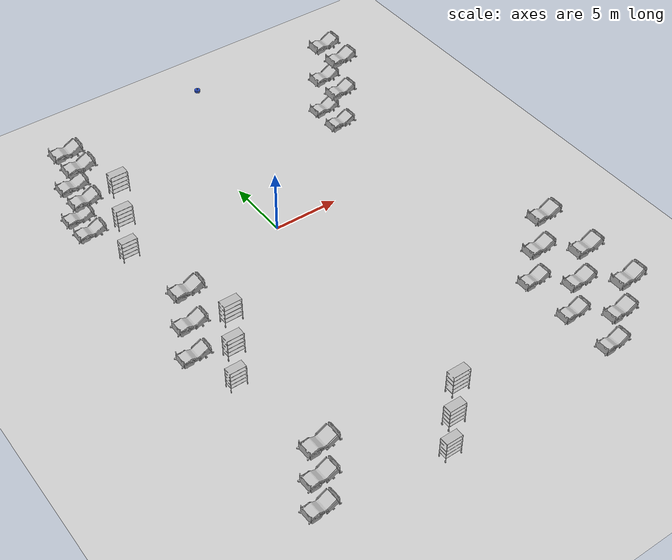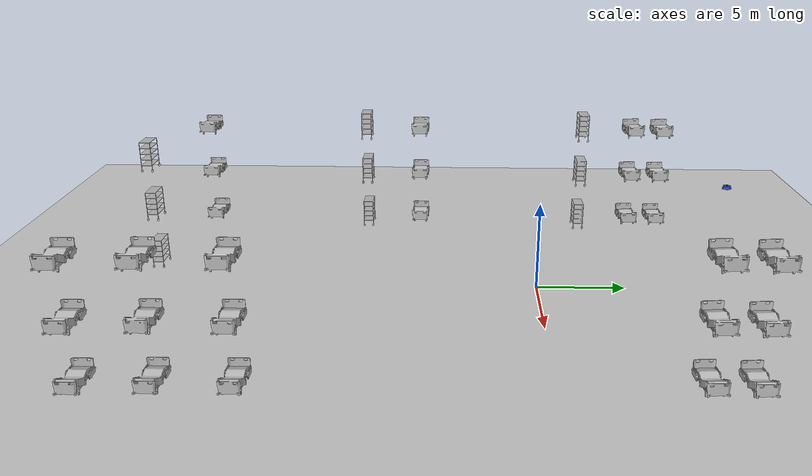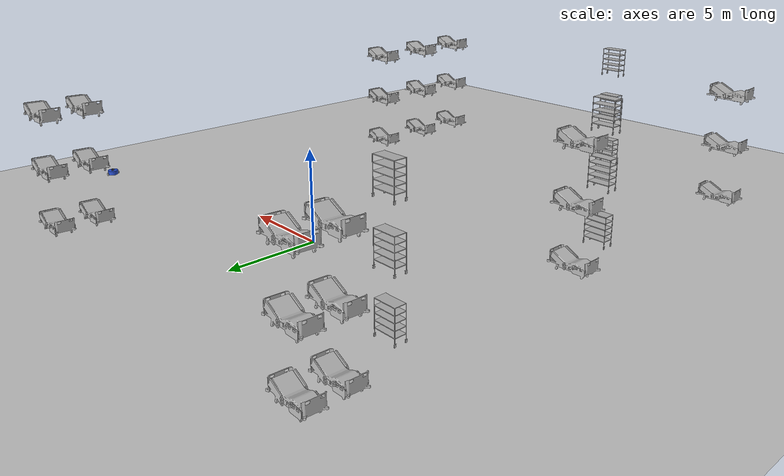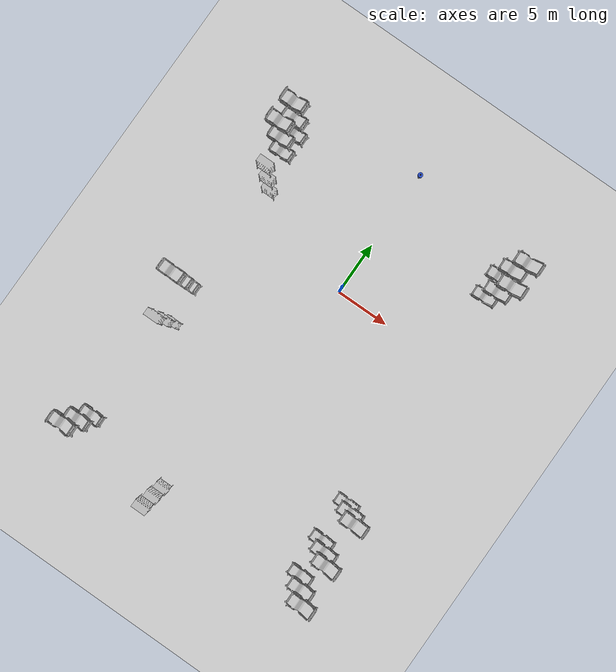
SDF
<sdf version="1.6">
 <world name="world">
  <gravity>0 0 -9.8</gravity>
  <physics name="default_physics" default="0" type="ode">
   <max_step_size>0.001</max_step_size>
   <real_time_factor>1</real_time_factor>
   <real_time_update_rate>1000</real_time_update_rate>
  </physics>
  <scene><ambient>0.6 0.6 0.6 1</ambient><background>0.4 0.4 0.4 1</background><shadows>0</shadows></scene>
  <light name="sun" type="directional">
   <pose>0 0 10 0 -0 0</pose>
   <diffuse>0.8 0.8 0.8 1</diffuse>
   <specular>0.2 0.2 0.2 1</specular>
   <attenuation>
    <range>1000</range>
    <constant>0.9</constant>
    <linear>0.01</linear>
    <quadratic>0.001</quadratic>
   </attenuation>
   <direction>-0.5 0.1 -0.9</direction>
  </light>
  <model name="ground_plane">
   <static>1</static>
   <link name="link">
    <collision name="collision">
     <geometry><plane><normal>0 0 1</normal><size>100 100</size></plane></geometry>
     <surface><friction><ode><mu>100</mu><mu2>50</mu2></ode></friction></surface>
    </collision>
    <visual name="visual">
     <cast_shadows>0</cast_shadows>
     <geometry><plane><normal>0 0 1</normal><size>100 100</size></plane></geometry>
     <material>
      <script><uri>file://media/materials/scripts/gazebo.material</uri><name>Gazebo/Grey</name></script>
     </material>
    </visual>
   </link>
   <pose>0 0 -0.1 0 -0 0</pose>
  </model>
  <model name="CGMClassic_1">
   <static>1</static>
   <link name="CGMClassic::body">
    <pose>11.1777 -18.4129 0 0 0 -3.13719</pose>
    <visual name="visual">
     <geometry>
      <mesh><uri>model://CGMClassic/meshes/CGMClassic.obj</uri><scale>0.01 0.01 0.01</scale></mesh>
     </geometry>
    </visual>
    <collision name="collision">
     <geometry>
      <mesh><uri>model://CGMClassic/meshes/CGMClassic.obj</uri><scale>0.01 0.01 0.01</scale></mesh>
     </geometry>
    </collision>
   </link>
  </model>
  <model name="CGMClassic_2">
   <static>1</static>
   <link name="CGMClassic::body">
    <pose>11.1179 -14.6493 0 0 0 -3.13599</pose>
    <visual name="visual">
     <geometry>
      <mesh><uri>model://CGMClassic/meshes/CGMClassic.obj</uri><scale>0.01 0.01 0.01</scale></mesh>
     </geometry>
    </visual>
    <collision name="collision">
     <geometry>
      <mesh><uri>model://CGMClassic/meshes/CGMClassic.obj</uri><scale>0.01 0.01 0.01</scale></mesh>
     </geometry>
    </collision>
   </link>
  </model>
  <model name="CGMClassic_3">
   <static>1</static>
   <link name="CGMClassic::body">
    <pose>-11.2304 -21.1134 0 0 0 -3.11834</pose>
    <visual name="visual">
     <geometry>
      <mesh><uri>model://CGMClassic/meshes/CGMClassic.obj</uri><scale>0.01 0.01 0.01</scale></mesh>
     </geometry>
    </visual>
    <collision name="collision">
     <geometry>
      <mesh><uri>model://CGMClassic/meshes/CGMClassic.obj</uri><scale>0.01 0.01 0.01</scale></mesh>
     </geometry>
    </collision>
   </link>
  </model>
  <model name="CGMClassic_4">
   <static>1</static>
   <link name="CGMClassic::body">
    <pose>-11.0878 -7.00992 0 0 -0 3.1351</pose>
    <visual name="visual">
     <geometry>
      <mesh><uri>model://CGMClassic/meshes/CGMClassic.obj</uri><scale>0.01 0.01 0.01</scale></mesh>
     </geometry>
    </visual>
    <collision name="collision">
     <geometry>
      <mesh><uri>model://CGMClassic/meshes/CGMClassic.obj</uri><scale>0.01 0.01 0.01</scale></mesh>
     </geometry>
    </collision>
   </link>
  </model>
  <model name="CGMClassic_5">
   <static>1</static>
   <link name="CGMClassic::body">
    <pose>-11.0106 8.9505 -0.008203 -0.035019 -0.000392 3.13388</pose>
    <visual name="visual">
     <geometry>
      <mesh><uri>model://CGMClassic/meshes/CGMClassic.obj</uri><scale>0.01 0.01 0.01</scale></mesh>
     </geometry>
    </visual>
    <collision name="collision">
     <geometry>
      <mesh><uri>model://CGMClassic/meshes/CGMClassic.obj</uri><scale>0.01 0.01 0.01</scale></mesh>
     </geometry>
    </collision>
   </link>
  </model>
  <model name="CGMClassic_6">
   <static>1</static>
   <link name="CGMClassic::body">
    <pose>-11.025 7.10335 0 -0.035021 1.8e-05 -3.13762</pose>
    <visual name="visual">
     <geometry>
      <mesh><uri>model://CGMClassic/meshes/CGMClassic.obj</uri><scale>0.01 0.01 0.01</scale></mesh>
     </geometry>
    </visual>
    <collision name="collision">
     <geometry>
      <mesh><uri>model://CGMClassic/meshes/CGMClassic.obj</uri><scale>0.01 0.01 0.01</scale></mesh>
     </geometry>
    </collision>
   </link>
  </model>
  <model name="StorageRack_2">
   <link name="StorageRack::link">
    <pose>-2.69866 -22.4178 -8e-06 0 4e-06 0</pose>
    <visual name="visual">
     <geometry><mesh><uri>model://StorageRack/meshes/StorageRack.obj</uri></mesh></geometry>
    </visual>
    <collision name="collision">
     <geometry><mesh><uri>model://StorageRack/meshes/StorageRack.obj</uri></mesh></geometry>
    </collision>
   </link>
   <static>1</static>
  </model>
  <model name="CGMClassic_7">
   <static>1</static>
   <link name="CGMClassic::body">
    <pose>10.6166 9.06291 -0.008203 -0.03501 0.000885 -3.11285</pose>
    <visual name="visual">
     <geometry>
      <mesh><uri>model://CGMClassic/meshes/CGMClassic.obj</uri><scale>0.01 0.01 0.01</scale></mesh>
     </geometry>
    </visual>
    <collision name="collision">
     <geometry>
      <mesh><uri>model://CGMClassic/meshes/CGMClassic.obj</uri><scale>0.01 0.01 0.01</scale></mesh>
     </geometry>
    </collision>
   </link>
  </model>
  <model name="CGMClassic_8">
   <static>1</static>
   <link name="CGMClassic::body">
    <pose>10.6006 6.90956 -0.008203 -0.035003 0.001133 -3.10576</pose>
    <visual name="visual">
     <geometry>
      <mesh><uri>model://CGMClassic/meshes/CGMClassic.obj</uri><scale>0.01 0.01 0.01</scale></mesh>
     </geometry>
    </visual>
    <collision name="collision">
     <geometry>
      <mesh><uri>model://CGMClassic/meshes/CGMClassic.obj</uri><scale>0.01 0.01 0.01</scale></mesh>
     </geometry>
    </collision>
   </link>
  </model>
  <model name="CGMClassic_9">
   <static>1</static>
   <link name="CGMClassic::body">
    <pose>11.3613 -21.8867 0 0 0 -3.12292</pose>
    <visual name="visual">
     <geometry>
      <mesh><uri>model://CGMClassic/meshes/CGMClassic.obj</uri><scale>0.01 0.01 0.01</scale></mesh>
     </geometry>
    </visual>
    <collision name="collision">
     <geometry>
      <mesh><uri>model://CGMClassic/meshes/CGMClassic.obj</uri><scale>0.01 0.01 0.01</scale></mesh>
     </geometry>
    </collision>
   </link>
  </model>
  <model name="StorageRack_3">
   <link name="StorageRack::link">
    <pose>-10.1178 -10.4694 0 0 -0 0</pose>
    <visual name="visual">
     <geometry><mesh><uri>model://StorageRack/meshes/StorageRack.obj</uri></mesh></geometry>
    </visual>
    <collision name="collision">
     <geometry><mesh><uri>model://StorageRack/meshes/StorageRack.obj</uri></mesh></geometry>
    </collision>
   </link>
   <static>1</static>
  </model>
  <model name="StorageRack_4">
   <link name="StorageRack::link">
    <pose>-9.91557 3.5644 -9e-06 1e-06 1e-06 -0.000273</pose>
    <visual name="visual">
     <geometry><mesh><uri>model://StorageRack/meshes/StorageRack.obj</uri></mesh></geometry>
    </visual>
    <collision name="collision">
     <geometry><mesh><uri>model://StorageRack/meshes/StorageRack.obj</uri></mesh></geometry>
    </collision>
   </link>
   <static>1</static>
  </model>
  <model name="floor_1_CGMClassic_1">
   <static>1</static>
   <link name="CGMClassic::body">
    <pose>11.1777 -18.4129 3 0 0 -3.13719</pose>
    <visual name="visual">
     <geometry>
      <mesh><uri>model://CGMClassic/meshes/CGMClassic.obj</uri><scale>0.01 0.01 0.01</scale></mesh>
     </geometry>
    </visual>
    <collision name="collision">
     <geometry>
      <mesh><uri>model://CGMClassic/meshes/CGMClassic.obj</uri><scale>0.01 0.01 0.01</scale></mesh>
     </geometry>
    </collision>
   </link>
  </model>
  <model name="floor_1_CGMClassic_2">
   <static>1</static>
   <link name="CGMClassic::body">
    <pose>11.1179 -14.6493 3 0 0 -3.13599</pose>
    <visual name="visual">
     <geometry>
      <mesh><uri>model://CGMClassic/meshes/CGMClassic.obj</uri><scale>0.01 0.01 0.01</scale></mesh>
     </geometry>
    </visual>
    <collision name="collision">
     <geometry>
      <mesh><uri>model://CGMClassic/meshes/CGMClassic.obj</uri><scale>0.01 0.01 0.01</scale></mesh>
     </geometry>
    </collision>
   </link>
  </model>
  <model name="floor_1_CGMClassic_3">
   <static>1</static>
   <link name="CGMClassic::body">
    <pose>-11.2304 -21.1134 3 0 0 -3.11834</pose>
    <visual name="visual">
     <geometry>
      <mesh><uri>model://CGMClassic/meshes/CGMClassic.obj</uri><scale>0.01 0.01 0.01</scale></mesh>
     </geometry>
    </visual>
    <collision name="collision">
     <geometry>
      <mesh><uri>model://CGMClassic/meshes/CGMClassic.obj</uri><scale>0.01 0.01 0.01</scale></mesh>
     </geometry>
    </collision>
   </link>
  </model>
  <model name="floor_1_CGMClassic_4">
   <static>1</static>
   <link name="CGMClassic::body">
    <pose>-11.0878 -7.00992 3 0 -0 3.1351</pose>
    <visual name="visual">
     <geometry>
      <mesh><uri>model://CGMClassic/meshes/CGMClassic.obj</uri><scale>0.01 0.01 0.01</scale></mesh>
     </geometry>
    </visual>
    <collision name="collision">
     <geometry>
      <mesh><uri>model://CGMClassic/meshes/CGMClassic.obj</uri><scale>0.01 0.01 0.01</scale></mesh>
     </geometry>
    </collision>
   </link>
  </model>
  <model name="floor_1_CGMClassic_5">
   <static>1</static>
   <link name="CGMClassic::body">
    <pose>-11.0106 8.9505 2.9918 -0.035019 -0.000392 3.13388</pose>
    <visual name="visual">
     <geometry>
      <mesh><uri>model://CGMClassic/meshes/CGMClassic.obj</uri><scale>0.01 0.01 0.01</scale></mesh>
     </geometry>
    </visual>
    <collision name="collision">
     <geometry>
      <mesh><uri>model://CGMClassic/meshes/CGMClassic.obj</uri><scale>0.01 0.01 0.01</scale></mesh>
     </geometry>
    </collision>
   </link>
  </model>
  <model name="floor_1_CGMClassic_6">
   <static>1</static>
   <link name="CGMClassic::body">
    <pose>-11.025 7.10335 3 -0.035021 1.8e-05 -3.13762</pose>
    <visual name="visual">
     <geometry>
      <mesh><uri>model://CGMClassic/meshes/CGMClassic.obj</uri><scale>0.01 0.01 0.01</scale></mesh>
     </geometry>
    </visual>
    <collision name="collision">
     <geometry>
      <mesh><uri>model://CGMClassic/meshes/CGMClassic.obj</uri><scale>0.01 0.01 0.01</scale></mesh>
     </geometry>
    </collision>
   </link>
  </model>
  <model name="floor_1_StorageRack_2">
   <link name="StorageRack::link">
    <pose>-2.69866 -22.4178 2.99999 0 4e-06 0</pose>
    <visual name="visual">
     <geometry><mesh><uri>model://StorageRack/meshes/StorageRack.obj</uri></mesh></geometry>
    </visual>
    <collision name="collision">
     <geometry><mesh><uri>model://StorageRack/meshes/StorageRack.obj</uri></mesh></geometry>
    </collision>
   </link>
   <static>1</static>
  </model>
  <model name="floor_1_CGMClassic_7">
   <static>1</static>
   <link name="CGMClassic::body">
    <pose>10.6166 9.06291 2.9918 -0.03501 0.000885 -3.11285</pose>
    <visual name="visual">
     <geometry>
      <mesh><uri>model://CGMClassic/meshes/CGMClassic.obj</uri><scale>0.01 0.01 0.01</scale></mesh>
     </geometry>
    </visual>
    <collision name="collision">
     <geometry>
      <mesh><uri>model://CGMClassic/meshes/CGMClassic.obj</uri><scale>0.01 0.01 0.01</scale></mesh>
     </geometry>
    </collision>
   </link>
  </model>
  <model name="floor_1_CGMClassic_8">
   <static>1</static>
   <link name="CGMClassic::body">
    <pose>10.6006 6.90956 2.9918 -0.035003 0.001133 -3.10576</pose>
    <visual name="visual">
     <geometry>
      <mesh><uri>model://CGMClassic/meshes/CGMClassic.obj</uri><scale>0.01 0.01 0.01</scale></mesh>
     </geometry>
    </visual>
    <collision name="collision">
     <geometry>
      <mesh><uri>model://CGMClassic/meshes/CGMClassic.obj</uri><scale>0.01 0.01 0.01</scale></mesh>
     </geometry>
    </collision>
   </link>
  </model>
  <model name="floor_1_CGMClassic_9">
   <static>1</static>
   <link name="CGMClassic::body">
    <pose>11.3613 -21.8867 3 0 0 -3.12292</pose>
    <visual name="visual">
     <geometry>
      <mesh><uri>model://CGMClassic/meshes/CGMClassic.obj</uri><scale>0.01 0.01 0.01</scale></mesh>
     </geometry>
    </visual>
    <collision name="collision">
     <geometry>
      <mesh><uri>model://CGMClassic/meshes/CGMClassic.obj</uri><scale>0.01 0.01 0.01</scale></mesh>
     </geometry>
    </collision>
   </link>
  </model>
  <model name="floor_1_StorageRack_3">
   <link name="StorageRack::link">
    <pose>-10.1178 -10.4694 3 0 -0 0</pose>
    <visual name="visual">
     <geometry><mesh><uri>model://StorageRack/meshes/StorageRack.obj</uri></mesh></geometry>
    </visual>
    <collision name="collision">
     <geometry><mesh><uri>model://StorageRack/meshes/StorageRack.obj</uri></mesh></geometry>
    </collision>
   </link>
   <static>1</static>
  </model>
  <model name="floor_1_StorageRack_4">
   <link name="StorageRack::link">
    <pose>-9.91557 3.5644 2.99999 1e-06 1e-06 -0.000273</pose>
    <visual name="visual">
     <geometry><mesh><uri>model://StorageRack/meshes/StorageRack.obj</uri></mesh></geometry>
    </visual>
    <collision name="collision">
     <geometry><mesh><uri>model://StorageRack/meshes/StorageRack.obj</uri></mesh></geometry>
    </collision>
   </link>
   <static>1</static>
  </model>
  <model name="floor_2_CGMClassic_1">
   <static>1</static>
   <link name="CGMClassic::body">
    <pose>11.1777 -18.4129 6 0 0 -3.13719</pose>
    <visual name="visual">
     <geometry>
      <mesh><uri>model://CGMClassic/meshes/CGMClassic.obj</uri><scale>0.01 0.01 0.01</scale></mesh>
     </geometry>
    </visual>
    <collision name="collision">
     <geometry>
      <mesh><uri>model://CGMClassic/meshes/CGMClassic.obj</uri><scale>0.01 0.01 0.01</scale></mesh>
     </geometry>
    </collision>
   </link>
  </model>
  <model name="floor_2_CGMClassic_2">
   <static>1</static>
   <link name="CGMClassic::body">
    <pose>11.1179 -14.6493 6 0 0 -3.13599</pose>
    <visual name="visual">
     <geometry>
      <mesh><uri>model://CGMClassic/meshes/CGMClassic.obj</uri><scale>0.01 0.01 0.01</scale></mesh>
     </geometry>
    </visual>
    <collision name="collision">
     <geometry>
      <mesh><uri>model://CGMClassic/meshes/CGMClassic.obj</uri><scale>0.01 0.01 0.01</scale></mesh>
     </geometry>
    </collision>
   </link>
  </model>
  <model name="floor_2_CGMClassic_3">
   <static>1</static>
   <link name="CGMClassic::body">
    <pose>-11.2304 -21.1134 6 0 0 -3.11834</pose>
    <visual name="visual">
     <geometry>
      <mesh><uri>model://CGMClassic/meshes/CGMClassic.obj</uri><scale>0.01 0.01 0.01</scale></mesh>
     </geometry>
    </visual>
    <collision name="collision">
     <geometry>
      <mesh><uri>model://CGMClassic/meshes/CGMClassic.obj</uri><scale>0.01 0.01 0.01</scale></mesh>
     </geometry>
    </collision>
   </link>
  </model>
  <model name="floor_2_CGMClassic_4">
   <static>1</static>
   <link name="CGMClassic::body">
    <pose>-11.0878 -7.00992 6 0 -0 3.1351</pose>
    <visual name="visual">
     <geometry>
      <mesh><uri>model://CGMClassic/meshes/CGMClassic.obj</uri><scale>0.01 0.01 0.01</scale></mesh>
     </geometry>
    </visual>
    <collision name="collision">
     <geometry>
      <mesh><uri>model://CGMClassic/meshes/CGMClassic.obj</uri><scale>0.01 0.01 0.01</scale></mesh>
     </geometry>
    </collision>
   </link>
  </model>
  <model name="floor_2_CGMClassic_5">
   <static>1</static>
   <link name="CGMClassic::body">
    <pose>-11.0106 8.9505 5.9918 -0.035019 -0.000392 3.13388</pose>
    <visual name="visual">
     <geometry>
      <mesh><uri>model://CGMClassic/meshes/CGMClassic.obj</uri><scale>0.01 0.01 0.01</scale></mesh>
     </geometry>
    </visual>
    <collision name="collision">
     <geometry>
      <mesh><uri>model://CGMClassic/meshes/CGMClassic.obj</uri><scale>0.01 0.01 0.01</scale></mesh>
     </geometry>
    </collision>
   </link>
  </model>
  <model name="floor_2_CGMClassic_6">
   <static>1</static>
   <link name="CGMClassic::body">
    <pose>-11.025 7.10335 6 -0.035021 1.8e-05 -3.13762</pose>
    <visual name="visual">
     <geometry>
      <mesh><uri>model://CGMClassic/meshes/CGMClassic.obj</uri><scale>0.01 0.01 0.01</scale></mesh>
     </geometry>
    </visual>
    <collision name="collision">
     <geometry>
      <mesh><uri>model://CGMClassic/meshes/CGMClassic.obj</uri><scale>0.01 0.01 0.01</scale></mesh>
     </geometry>
    </collision>
   </link>
  </model>
  <model name="floor_2_StorageRack_2">
   <link name="StorageRack::link">
    <pose>-2.69866 -22.4178 5.99999 0 4e-06 0</pose>
    <visual name="visual">
     <geometry><mesh><uri>model://StorageRack/meshes/StorageRack.obj</uri></mesh></geometry>
    </visual>
    <collision name="collision">
     <geometry><mesh><uri>model://StorageRack/meshes/StorageRack.obj</uri></mesh></geometry>
    </collision>
   </link>
   <static>1</static>
  </model>
  <model name="floor_2_CGMClassic_7">
   <static>1</static>
   <link name="CGMClassic::body">
    <pose>10.6166 9.06291 5.9918 -0.03501 0.000885 -3.11285</pose>
    <visual name="visual">
     <geometry>
      <mesh><uri>model://CGMClassic/meshes/CGMClassic.obj</uri><scale>0.01 0.01 0.01</scale></mesh>
     </geometry>
    </visual>
    <collision name="collision">
     <geometry>
      <mesh><uri>model://CGMClassic/meshes/CGMClassic.obj</uri><scale>0.01 0.01 0.01</scale></mesh>
     </geometry>
    </collision>
   </link>
  </model>
  <model name="floor_2_CGMClassic_8">
   <static>1</static>
   <link name="CGMClassic::body">
    <pose>10.6006 6.90956 5.9918 -0.035003 0.001133 -3.10576</pose>
    <visual name="visual">
     <geometry>
      <mesh><uri>model://CGMClassic/meshes/CGMClassic.obj</uri><scale>0.01 0.01 0.01</scale></mesh>
     </geometry>
    </visual>
    <collision name="collision">
     <geometry>
      <mesh><uri>model://CGMClassic/meshes/CGMClassic.obj</uri><scale>0.01 0.01 0.01</scale></mesh>
     </geometry>
    </collision>
   </link>
  </model>
  <model name="floor_2_CGMClassic_9">
   <static>1</static>
   <link name="CGMClassic::body">
    <pose>11.3613 -21.8867 6 0 0 -3.12292</pose>
    <visual name="visual">
     <geometry>
      <mesh><uri>model://CGMClassic/meshes/CGMClassic.obj</uri><scale>0.01 0.01 0.01</scale></mesh>
     </geometry>
    </visual>
    <collision name="collision">
     <geometry>
      <mesh><uri>model://CGMClassic/meshes/CGMClassic.obj</uri><scale>0.01 0.01 0.01</scale></mesh>
     </geometry>
    </collision>
   </link>
  </model>
  <model name="floor_2_StorageRack_3">
   <link name="StorageRack::link">
    <pose>-10.1178 -10.4694 6 0 -0 0</pose>
    <visual name="visual">
     <geometry><mesh><uri>model://StorageRack/meshes/StorageRack.obj</uri></mesh></geometry>
    </visual>
    <collision name="collision">
     <geometry><mesh><uri>model://StorageRack/meshes/StorageRack.obj</uri></mesh></geometry>
    </collision>
   </link>
   <static>1</static>
  </model>
  <model name="floor_2_StorageRack_4">
   <link name="StorageRack::link">
    <pose>-9.91557 3.5644 5.99999 1e-06 1e-06 -0.000273</pose>
    <visual name="visual">
     <geometry><mesh><uri>model://StorageRack/meshes/StorageRack.obj</uri></mesh></geometry>
    </visual>
    <collision name="collision">
     <geometry><mesh><uri>model://StorageRack/meshes/StorageRack.obj</uri></mesh></geometry>
    </collision>
   </link>
   <static>1</static>
  </model>
  <magnetic_field>6e-06 2.3e-05 -4.2e-05</magnetic_field>
  <atmosphere type="adiabatic"/>
  <spherical_coordinates>
   <surface_model>EARTH_WGS84</surface_model>
   <latitude_deg>0</latitude_deg>
   <longitude_deg>0</longitude_deg>
   <elevation>0</elevation>
   <heading_deg>0</heading_deg>
  </spherical_coordinates>
  <model name="my_robot">
   <link name="base_link">
    <inertial>
     <pose>0 0 4e-06 0 -0 0</pose>
     <mass>25.001</mass>
     <inertia><ixx>1.00101</ixx><ixy>0</ixy><ixz>0</ixz><iyy>1.00101</iyy><iyz>0</iyz><izz>1.001</izz></inertia>
    </inertial>
    <collision name="base_link_collision">
     <geometry><cylinder><length>0.16</length><radius>0.2</radius></cylinder></geometry>
    </collision>
    <collision name="base_link_fixed_joint_lump__lidar_link_collision_1">
     <pose>0 0 0.1 0 -0 0</pose>
     <geometry><cylinder><length>0.06</length><radius>0.05</radius></cylinder></geometry>
    </collision>
    <visual name="base_link_visual">
     <geometry><cylinder><length>0.16</length><radius>0.2</radius></cylinder></geometry>
     <material>
      <script><name>Gazebo/Blue</name><uri>file://media/materials/scripts/gazebo.material</uri></script>
     </material>
    </visual>
    <visual name="base_link_fixed_joint_lump__lidar_link_visual_1">
     <pose>0 0 0.1 0 -0 0</pose>
     <geometry><cylinder><length>0.05</length><radius>0.05</radius></cylinder></geometry>
     <material>
      <script><name>Gazebo/Black</name><uri>file://media/materials/scripts/gazebo.material</uri></script>
     </material>
    </visual>
    <sensor name="ls01g" type="ray">
     <visualize>0</visualize>
     <update_rate>7</update_rate>
     <ray>
      <scan>
       <horizontal>
        <samples>360</samples>
        <resolution>1</resolution>
        <min_angle>-3.14159</min_angle>
        <max_angle>3.14159</max_angle>
       </horizontal>
       <vertical><samples>1</samples><min_angle>0</min_angle><max_angle>0</max_angle></vertical>
      </scan>
      <range><min>0.1</min><max>8</max><resolution>0.01</resolution></range>
      <noise><type>gaussian</type><mean>0</mean><stddev>0.02</stddev></noise>
     </ray>
     <plugin name="gazebo_ls01g" filename="libgazebo_ros_laser.so">
      <topicName>/scan</topicName>
      <frameName>lidar_link</frameName>
      <robotNamespace>/</robotNamespace>
     </plugin>
     <pose>0 0 0.1 0 -0 0</pose>
    </sensor>
   </link>
   <link name="back_caster_link">
    <pose>-0.18 0 -0.095 0 -0 0</pose>
    <inertial>
     <mass>0.5</mass>
     <inertia><ixx>1</ixx><ixy>0</ixy><ixz>0</ixz><iyy>1</iyy><iyz>0</iyz><izz>1</izz></inertia>
    </inertial>
    <collision name="back_caster_link_collision">
     <geometry><sphere><radius>0.015</radius></sphere></geometry>
    </collision>
    <visual name="back_caster_link_visual"><geometry><sphere><radius>0.015</radius></sphere></geometry></visual>
   </link>
   <joint name="back_caster_joint" type="revolute">
    <child>back_caster_link</child>
    <parent>base_link</parent>
    <axis>
     <xyz>0 1 0</xyz>
     <limit><lower>-1e+16</lower><upper>1e+16</upper></limit>
     <dynamics><spring_reference>0</spring_reference><spring_stiffness>0</spring_stiffness></dynamics>
     <use_parent_model_frame>0</use_parent_model_frame>
    </axis>
   </joint>
   <link name="front_caster_link">
    <pose>0.18 0 -0.095 0 -0 0</pose>
    <inertial>
     <mass>0.5</mass>
     <inertia><ixx>1</ixx><ixy>0</ixy><ixz>0</ixz><iyy>1</iyy><iyz>0</iyz><izz>1</izz></inertia>
    </inertial>
    <collision name="front_caster_link_collision">
     <geometry><sphere><radius>0.015</radius></sphere></geometry>
    </collision>
    <visual name="front_caster_link_visual"><geometry><sphere><radius>0.015</radius></sphere></geometry></visual>
   </link>
   <joint name="front_caster_joint" type="revolute">
    <child>front_caster_link</child>
    <parent>base_link</parent>
    <axis>
     <xyz>0 1 0</xyz>
     <limit><lower>-1e+16</lower><upper>1e+16</upper></limit>
     <dynamics><spring_reference>0</spring_reference><spring_stiffness>0</spring_stiffness></dynamics>
     <use_parent_model_frame>0</use_parent_model_frame>
    </axis>
   </joint>
   <link name="left_wheel_link">
    <pose>0 0.22 -0.05 0 -0 0</pose>
    <inertial>
     <mass>10</mass>
     <inertia><ixx>1</ixx><ixy>0</ixy><ixz>0</ixz><iyy>1</iyy><iyz>0</iyz><izz>1</izz></inertia>
    </inertial>
    <collision name="left_wheel_link_collision">
     <pose>0 0 0 1.5707 -0 0</pose>
     <geometry><cylinder><length>0.025</length><radius>0.06</radius></cylinder></geometry>
    </collision>
    <visual name="left_wheel_link_visual">
     <pose>0 0 0 1.5707 -0 0</pose>
     <geometry><cylinder><length>0.025</length><radius>0.06</radius></cylinder></geometry>
    </visual>
   </link>
   <joint name="left_wheel_joint" type="revolute">
    <child>left_wheel_link</child>
    <parent>base_link</parent>
    <axis>
     <xyz>0 1 0</xyz>
     <limit><lower>-1e+16</lower><upper>1e+16</upper></limit>
     <dynamics><spring_reference>0</spring_reference><spring_stiffness>0</spring_stiffness></dynamics>
     <use_parent_model_frame>0</use_parent_model_frame>
    </axis>
   </joint>
   <link name="right_wheel_link">
    <pose>0 -0.22 -0.05 0 -0 0</pose>
    <inertial>
     <mass>10</mass>
     <inertia><ixx>1</ixx><ixy>0</ixy><ixz>0</ixz><iyy>1</iyy><iyz>0</iyz><izz>1</izz></inertia>
    </inertial>
    <collision name="right_wheel_link_collision">
     <pose>0 0 0 1.5707 -0 0</pose>
     <geometry><cylinder><length>0.025</length><radius>0.06</radius></cylinder></geometry>
    </collision>
    <visual name="right_wheel_link_visual">
     <pose>0 0 0 1.5707 -0 0</pose>
     <geometry><cylinder><length>0.025</length><radius>0.06</radius></cylinder></geometry>
    </visual>
   </link>
   <joint name="right_wheel_joint" type="revolute">
    <child>right_wheel_link</child>
    <parent>base_link</parent>
    <axis>
     <xyz>0 1 0</xyz>
     <limit><lower>-1e+16</lower><upper>1e+16</upper></limit>
     <dynamics><spring_reference>0</spring_reference><spring_stiffness>0</spring_stiffness></dynamics>
     <use_parent_model_frame>0</use_parent_model_frame>
    </axis>
   </joint>
   <plugin name="differential_drive_controller" filename="libgazebo_ros_diff_drive.so">
    <rosDebugLevel>Debug</rosDebugLevel>
    <publishWheelTF>1</publishWheelTF>
    <robotNamespace>/</robotNamespace>
    <publishTf>1</publishTf>
    <publishWheelJointState>1</publishWheelJointState>
    <alwaysOn>1</alwaysOn>
    <updateRate>100.0</updateRate>
    <legacyMode>1</legacyMode>
    <leftJoint>left_wheel_joint</leftJoint>
    <rightJoint>right_wheel_joint</rightJoint>
    <wheelSeparation>0.44</wheelSeparation>
    <wheelDiameter>0.12</wheelDiameter>
    <broadcastTF>1</broadcastTF>
    <wheelTorque>30</wheelTorque>
    <wheelAcceleration>1.8</wheelAcceleration>
    <commandTopic>cmd_vel</commandTopic>
    <odometryFrame>odom</odometryFrame>
    <odometryTopic>odom</odometryTopic>
    <robotBaseFrame>base_link</robotBaseFrame>
   </plugin>
   <static>0</static>
   <plugin name="gazebo_ros_control" filename="libgazebo_ros_control.so">
    <robotNamespace>/robot</robotNamespace>
    <controlPeriod>0.01</controlPeriod>
    <robotSimType>gazebo_ros_control/DefaultRobotHWSim</robotSimType>
   </plugin>
   <pose>-9.4e-05 10.0002 6.11 0 -1e-06 -6.2e-05</pose>
  </model>
 </world>
</sdf>
